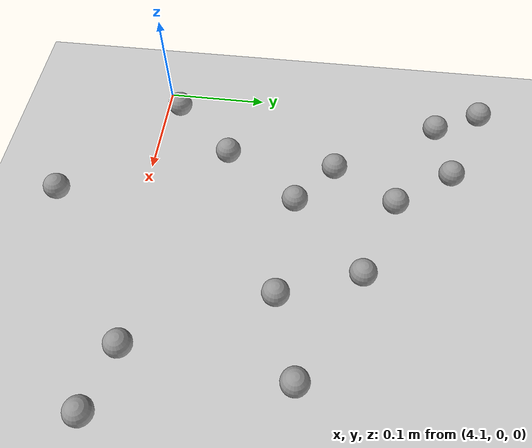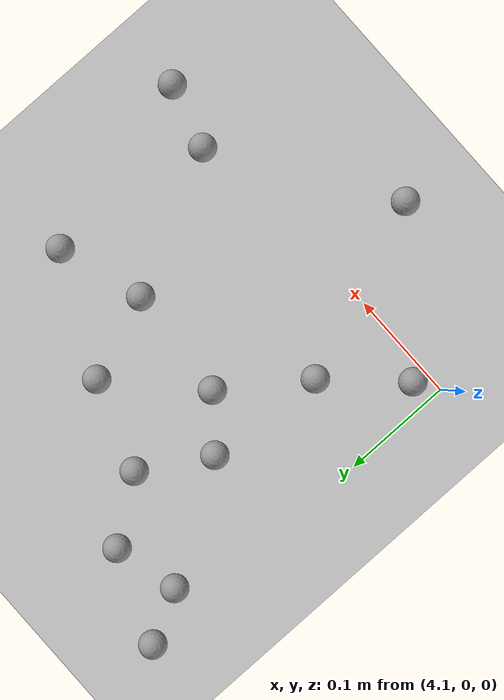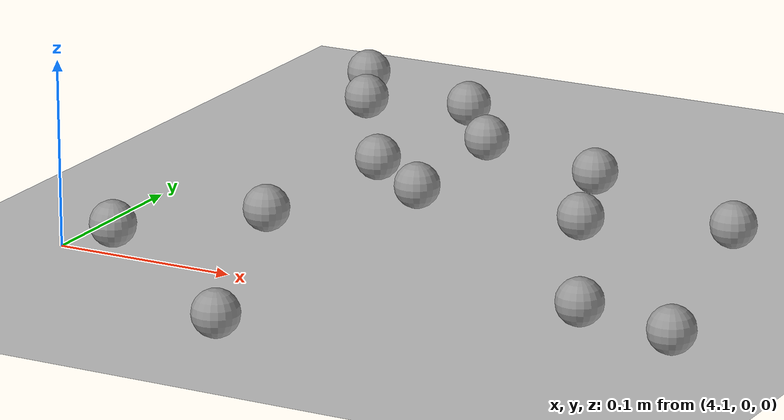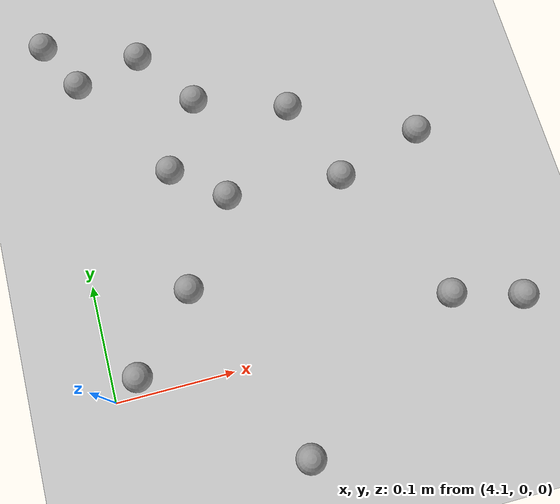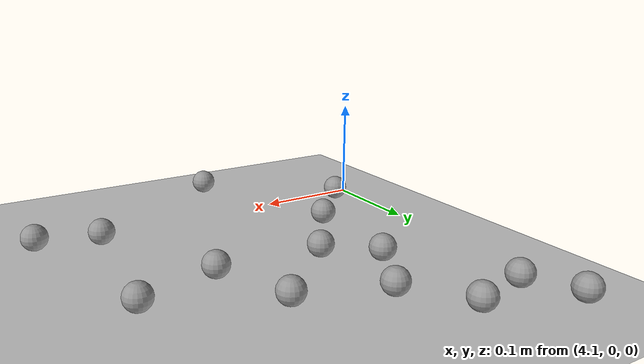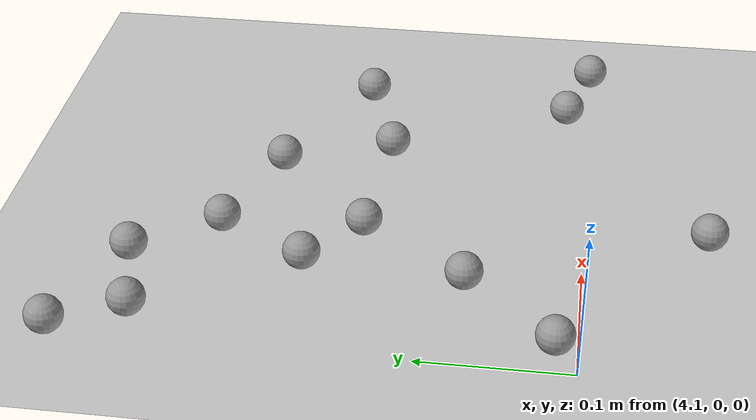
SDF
<sdf version="1.6">
 <world name="default">
  <model name="ground_plane">
   <static>1</static>
   <link name="link">
    <collision name="collision">
     <geometry><plane><normal>0 0 1</normal><size>100 100</size></plane></geometry>
     <surface><friction><ode><mu>100</mu><mu2>50</mu2></ode></friction></surface>
    </collision>
    <visual name="visual">
     <cast_shadows>0</cast_shadows>
     <geometry><plane><normal>0 0 1</normal><size>100 100</size></plane></geometry>
     <material>
      <script><uri>file://media/materials/scripts/gazebo.material</uri><name>Gazebo/Grey</name></script>
     </material>
    </visual>
   </link>
  </model>
  <model name="ball_bearing">
   <link name="link">
    <pose>0 0 0.003 0 -0 0</pose>
    <inertial>
     <mass>0.0011</mass>
     <inertia>
      <ixx>3.96e-09</ixx>
      <ixy>0</ixy>
      <ixz>0</ixz>
      <iyy>3.96e-09</iyy>
      <iyz>0</iyz>
      <izz>3.96e-09</izz>
     </inertia>
    </inertial>
    <collision name="collision">
     <geometry><sphere><radius>0.0125</radius></sphere></geometry>
     <surface>
      <contact>
       <poissons_ratio>0.305</poissons_ratio>
       <elastic_modulus>2e+11</elastic_modulus>
       <ode><kp>100000</kp><kd>100</kd><max_vel>100</max_vel><min_depth>0.001</min_depth></ode>
      </contact>
      <friction>
       <torsional>
        <coefficient>1</coefficient>
        <use_patch_radius>0</use_patch_radius>
        <surface_radius>0.01</surface_radius>
       </torsional>
      </friction>
     </surface>
    </collision>
    <visual name="visual">
     <geometry><sphere><radius>0.0125</radius></sphere></geometry>
     <material>
      <script><uri>file://media/materials/scripts/gazebo.material</uri><name>Gazebo/Grey</name></script>
     </material>
    </visual>
    <velocity_decay><linear>0</linear><angular>0.005</angular></velocity_decay>
   </link>
   <pose>4.10181 0.328356 0.0085 0 -0 0</pose>
  </model>
  <model name="ball_bearing_0">
   <link name="link">
    <pose>0 0 0.003 0 -0 0</pose>
    <inertial>
     <mass>0.0011</mass>
     <inertia>
      <ixx>3.96e-09</ixx>
      <ixy>0</ixy>
      <ixz>0</ixz>
      <iyy>3.96e-09</iyy>
      <iyz>0</iyz>
      <izz>3.96e-09</izz>
     </inertia>
    </inertial>
    <collision name="collision">
     <geometry><sphere><radius>0.0125</radius></sphere></geometry>
     <surface>
      <contact>
       <poissons_ratio>0.305</poissons_ratio>
       <elastic_modulus>2e+11</elastic_modulus>
       <ode><kp>100000</kp><kd>100</kd><max_vel>100</max_vel><min_depth>0.001</min_depth></ode>
      </contact>
      <friction>
       <torsional>
        <coefficient>1</coefficient>
        <use_patch_radius>0</use_patch_radius>
        <surface_radius>0.01</surface_radius>
       </torsional>
      </friction>
     </surface>
    </collision>
    <visual name="visual">
     <geometry><sphere><radius>0.0125</radius></sphere></geometry>
     <material>
      <script><uri>file://media/materials/scripts/gazebo.material</uri><name>Gazebo/Grey</name></script>
     </material>
    </visual>
    <velocity_decay><linear>0</linear><angular>0.005</angular></velocity_decay>
   </link>
   <pose>4.12531 0.282844 0.0085 0 -0 0</pose>
  </model>
  <model name="ball_bearing_1">
   <link name="link">
    <pose>0 0 0.003 0 -0 0</pose>
    <inertial>
     <mass>0.0011</mass>
     <inertia>
      <ixx>3.96e-09</ixx>
      <ixy>0</ixy>
      <ixz>0</ixz>
      <iyy>3.96e-09</iyy>
      <iyz>0</iyz>
      <izz>3.96e-09</izz>
     </inertia>
    </inertial>
    <collision name="collision">
     <geometry><sphere><radius>0.0125</radius></sphere></geometry>
     <surface>
      <contact>
       <poissons_ratio>0.305</poissons_ratio>
       <elastic_modulus>2e+11</elastic_modulus>
       <ode><kp>100000</kp><kd>100</kd><max_vel>100</max_vel><min_depth>0.001</min_depth></ode>
      </contact>
      <friction>
       <torsional>
        <coefficient>1</coefficient>
        <use_patch_radius>0</use_patch_radius>
        <surface_radius>0.01</surface_radius>
       </torsional>
      </friction>
     </surface>
    </collision>
    <visual name="visual">
     <geometry><sphere><radius>0.0125</radius></sphere></geometry>
     <material>
      <script><uri>file://media/materials/scripts/gazebo.material</uri><name>Gazebo/Grey</name></script>
     </material>
    </visual>
    <velocity_decay><linear>0</linear><angular>0.005</angular></velocity_decay>
   </link>
   <pose>4.18324 0.297197 0.0085 0 -0 0</pose>
  </model>
  <model name="ball_bearing_2">
   <link name="link">
    <pose>0 0 0.003 0 -0 0</pose>
    <inertial>
     <mass>0.0011</mass>
     <inertia>
      <ixx>3.96e-09</ixx>
      <ixy>0</ixy>
      <ixz>0</ixz>
      <iyy>3.96e-09</iyy>
      <iyz>0</iyz>
      <izz>3.96e-09</izz>
     </inertia>
    </inertial>
    <collision name="collision">
     <geometry><sphere><radius>0.0125</radius></sphere></geometry>
     <surface>
      <contact>
       <poissons_ratio>0.305</poissons_ratio>
       <elastic_modulus>2e+11</elastic_modulus>
       <ode><kp>100000</kp><kd>100</kd><max_vel>100</max_vel><min_depth>0.001</min_depth></ode>
      </contact>
      <friction>
       <torsional>
        <coefficient>1</coefficient>
        <use_patch_radius>0</use_patch_radius>
        <surface_radius>0.01</surface_radius>
       </torsional>
      </friction>
     </surface>
    </collision>
    <visual name="visual">
     <geometry><sphere><radius>0.0125</radius></sphere></geometry>
     <material>
      <script><uri>file://media/materials/scripts/gazebo.material</uri><name>Gazebo/Grey</name></script>
     </material>
    </visual>
    <velocity_decay><linear>0</linear><angular>0.005</angular></velocity_decay>
   </link>
   <pose>4.17938 0.075215 0.0085 0 -0 0</pose>
  </model>
  <model name="ball_bearing_3">
   <link name="link">
    <pose>0 0 0.003 0 -0 0</pose>
    <inertial>
     <mass>0.0011</mass>
     <inertia>
      <ixx>3.96e-09</ixx>
      <ixy>0</ixy>
      <ixz>0</ixz>
      <iyy>3.96e-09</iyy>
      <iyz>0</iyz>
      <izz>3.96e-09</izz>
     </inertia>
    </inertial>
    <collision name="collision">
     <geometry><sphere><radius>0.0125</radius></sphere></geometry>
     <surface>
      <contact>
       <poissons_ratio>0.305</poissons_ratio>
       <elastic_modulus>2e+11</elastic_modulus>
       <ode><kp>100000</kp><kd>100</kd><max_vel>100</max_vel><min_depth>0.001</min_depth></ode>
      </contact>
      <friction>
       <torsional>
        <coefficient>1</coefficient>
        <use_patch_radius>0</use_patch_radius>
        <surface_radius>0.01</surface_radius>
       </torsional>
      </friction>
     </surface>
    </collision>
    <visual name="visual">
     <geometry><sphere><radius>0.0125</radius></sphere></geometry>
     <material>
      <script><uri>file://media/materials/scripts/gazebo.material</uri><name>Gazebo/Grey</name></script>
     </material>
    </visual>
    <velocity_decay><linear>0</linear><angular>0.005</angular></velocity_decay>
   </link>
   <pose>4.23031 0.147379 0.0085 0 -0 0</pose>
  </model>
  <model name="ball_bearing_4">
   <link name="link">
    <pose>0 0 0.003 0 -0 0</pose>
    <inertial>
     <mass>0.0011</mass>
     <inertia>
      <ixx>3.96e-09</ixx>
      <ixy>0</ixy>
      <ixz>0</ixz>
      <iyy>3.96e-09</iyy>
      <iyz>0</iyz>
      <izz>3.96e-09</izz>
     </inertia>
    </inertial>
    <collision name="collision">
     <geometry><sphere><radius>0.0125</radius></sphere></geometry>
     <surface>
      <contact>
       <poissons_ratio>0.305</poissons_ratio>
       <elastic_modulus>2e+11</elastic_modulus>
       <ode><kp>100000</kp><kd>100</kd><max_vel>100</max_vel><min_depth>0.001</min_depth></ode>
      </contact>
      <friction>
       <torsional>
        <coefficient>1</coefficient>
        <use_patch_radius>0</use_patch_radius>
        <surface_radius>0.01</surface_radius>
       </torsional>
      </friction>
     </surface>
    </collision>
    <visual name="visual">
     <geometry><sphere><radius>0.0125</radius></sphere></geometry>
     <material>
      <script><uri>file://media/materials/scripts/gazebo.material</uri><name>Gazebo/Grey</name></script>
     </material>
    </visual>
    <velocity_decay><linear>0</linear><angular>0.005</angular></velocity_decay>
   </link>
   <pose>4.30259 0.215193 0.0085 0 -0 0</pose>
  </model>
  <model name="ball_bearing_5">
   <link name="link">
    <pose>0 0 0.003 0 -0 0</pose>
    <inertial>
     <mass>0.0011</mass>
     <inertia>
      <ixx>3.96e-09</ixx>
      <ixy>0</ixy>
      <ixz>0</ixz>
      <iyy>3.96e-09</iyy>
      <iyz>0</iyz>
      <izz>3.96e-09</izz>
     </inertia>
    </inertial>
    <collision name="collision">
     <geometry><sphere><radius>0.0125</radius></sphere></geometry>
     <surface>
      <contact>
       <poissons_ratio>0.305</poissons_ratio>
       <elastic_modulus>2e+11</elastic_modulus>
       <ode><kp>100000</kp><kd>100</kd><max_vel>100</max_vel><min_depth>0.001</min_depth></ode>
      </contact>
      <friction>
       <torsional>
        <coefficient>1</coefficient>
        <use_patch_radius>0</use_patch_radius>
        <surface_radius>0.01</surface_radius>
       </torsional>
      </friction>
     </surface>
    </collision>
    <visual name="visual">
     <geometry><sphere><radius>0.0125</radius></sphere></geometry>
     <material>
      <script><uri>file://media/materials/scripts/gazebo.material</uri><name>Gazebo/Grey</name></script>
     </material>
    </visual>
    <velocity_decay><linear>0</linear><angular>0.005</angular></velocity_decay>
   </link>
   <pose>4.22271 0.243001 0.0085 0 -0 0</pose>
  </model>
  <model name="ball_bearing_6">
   <link name="link">
    <pose>0 0 0.003 0 -0 0</pose>
    <inertial>
     <mass>0.0011</mass>
     <inertia>
      <ixx>3.96e-09</ixx>
      <ixy>0</ixy>
      <ixz>0</ixz>
      <iyy>3.96e-09</iyy>
      <iyz>0</iyz>
      <izz>3.96e-09</izz>
     </inertia>
    </inertial>
    <collision name="collision">
     <geometry><sphere><radius>0.0125</radius></sphere></geometry>
     <surface>
      <contact>
       <poissons_ratio>0.305</poissons_ratio>
       <elastic_modulus>2e+11</elastic_modulus>
       <ode><kp>100000</kp><kd>100</kd><max_vel>100</max_vel><min_depth>0.001</min_depth></ode>
      </contact>
      <friction>
       <torsional>
        <coefficient>1</coefficient>
        <use_patch_radius>0</use_patch_radius>
        <surface_radius>0.01</surface_radius>
       </torsional>
      </friction>
     </surface>
    </collision>
    <visual name="visual">
     <geometry><sphere><radius>0.0125</radius></sphere></geometry>
     <material>
      <script><uri>file://media/materials/scripts/gazebo.material</uri><name>Gazebo/Grey</name></script>
     </material>
    </visual>
    <velocity_decay><linear>0</linear><angular>0.005</angular></velocity_decay>
   </link>
   <pose>4.18738 0.182521 0.0085 0 -0 0</pose>
  </model>
  <model name="ball_bearing_7">
   <link name="link">
    <pose>0 0 0.003 0 -0 0</pose>
    <inertial>
     <mass>0.0011</mass>
     <inertia>
      <ixx>3.96e-09</ixx>
      <ixy>0</ixy>
      <ixz>0</ixz>
      <iyy>3.96e-09</iyy>
      <iyz>0</iyz>
      <izz>3.96e-09</izz>
     </inertia>
    </inertial>
    <collision name="collision">
     <geometry><sphere><radius>0.0125</radius></sphere></geometry>
     <surface>
      <contact>
       <poissons_ratio>0.305</poissons_ratio>
       <elastic_modulus>2e+11</elastic_modulus>
       <ode><kp>100000</kp><kd>100</kd><max_vel>100</max_vel><min_depth>0.001</min_depth></ode>
      </contact>
      <friction>
       <torsional>
        <coefficient>1</coefficient>
        <use_patch_radius>0</use_patch_radius>
        <surface_radius>0.01</surface_radius>
       </torsional>
      </friction>
     </surface>
    </collision>
    <visual name="visual">
     <geometry><sphere><radius>0.0125</radius></sphere></geometry>
     <material>
      <script><uri>file://media/materials/scripts/gazebo.material</uri><name>Gazebo/Grey</name></script>
     </material>
    </visual>
    <velocity_decay><linear>0</linear><angular>0.005</angular></velocity_decay>
   </link>
   <pose>4.242 -0.083049 0.0085 0 -0 0</pose>
  </model>
  <model name="ball_bearing_8">
   <link name="link">
    <pose>0 0 0.003 0 -0 0</pose>
    <inertial>
     <mass>0.0011</mass>
     <inertia>
      <ixx>3.96e-09</ixx>
      <ixy>0</ixy>
      <ixz>0</ixz>
      <iyy>3.96e-09</iyy>
      <iyz>0</iyz>
      <izz>3.96e-09</izz>
     </inertia>
    </inertial>
    <collision name="collision">
     <geometry><sphere><radius>0.0125</radius></sphere></geometry>
     <surface>
      <contact>
       <poissons_ratio>0.305</poissons_ratio>
       <elastic_modulus>2e+11</elastic_modulus>
       <ode><kp>100000</kp><kd>100</kd><max_vel>100</max_vel><min_depth>0.001</min_depth></ode>
      </contact>
      <friction>
       <torsional>
        <coefficient>1</coefficient>
        <use_patch_radius>0</use_patch_radius>
        <surface_radius>0.01</surface_radius>
       </torsional>
      </friction>
     </surface>
    </collision>
    <visual name="visual">
     <geometry><sphere><radius>0.0125</radius></sphere></geometry>
     <material>
      <script><uri>file://media/materials/scripts/gazebo.material</uri><name>Gazebo/Grey</name></script>
     </material>
    </visual>
    <velocity_decay><linear>0</linear><angular>0.005</angular></velocity_decay>
   </link>
   <pose>4.12245 0.014563 0.0085 0 -0 0</pose>
  </model>
  <model name="ball_bearing_9">
   <link name="link">
    <pose>0 0 0.003 0 -0 0</pose>
    <inertial>
     <mass>0.0011</mass>
     <inertia>
      <ixx>3.96e-09</ixx>
      <ixy>0</ixy>
      <ixz>0</ixz>
      <iyy>3.96e-09</iyy>
      <iyz>0</iyz>
      <izz>3.96e-09</izz>
     </inertia>
    </inertial>
    <collision name="collision">
     <geometry><sphere><radius>0.0125</radius></sphere></geometry>
     <surface>
      <contact>
       <poissons_ratio>0.305</poissons_ratio>
       <elastic_modulus>2e+11</elastic_modulus>
       <ode><kp>100000</kp><kd>100</kd><max_vel>100</max_vel><min_depth>0.001</min_depth></ode>
      </contact>
      <friction>
       <torsional>
        <coefficient>1</coefficient>
        <use_patch_radius>0</use_patch_radius>
        <surface_radius>0.01</surface_radius>
       </torsional>
      </friction>
     </surface>
    </collision>
    <visual name="visual">
     <geometry><sphere><radius>0.0125</radius></sphere></geometry>
     <material>
      <script><uri>file://media/materials/scripts/gazebo.material</uri><name>Gazebo/Grey</name></script>
     </material>
    </visual>
    <velocity_decay><linear>0</linear><angular>0.005</angular></velocity_decay>
   </link>
   <pose>4.40709 0.164758 0.0085 0 -0 0</pose>
  </model>
  <model name="ball_bearing_10">
   <link name="link">
    <pose>0 0 0.003 0 -0 0</pose>
    <inertial>
     <mass>0.0011</mass>
     <inertia>
      <ixx>3.96e-09</ixx>
      <ixy>0</ixy>
      <ixz>0</ixz>
      <iyy>3.96e-09</iyy>
      <iyz>0</iyz>
      <izz>3.96e-09</izz>
     </inertia>
    </inertial>
    <collision name="collision">
     <geometry><sphere><radius>0.0125</radius></sphere></geometry>
     <surface>
      <contact>
       <poissons_ratio>0.305</poissons_ratio>
       <elastic_modulus>2e+11</elastic_modulus>
       <ode><kp>100000</kp><kd>100</kd><max_vel>100</max_vel><min_depth>0.001</min_depth></ode>
      </contact>
      <friction>
       <torsional>
        <coefficient>1</coefficient>
        <use_patch_radius>0</use_patch_radius>
        <surface_radius>0.01</surface_radius>
       </torsional>
      </friction>
     </surface>
    </collision>
    <visual name="visual">
     <geometry><sphere><radius>0.0125</radius></sphere></geometry>
     <material>
      <script><uri>file://media/materials/scripts/gazebo.material</uri><name>Gazebo/Grey</name></script>
     </material>
    </visual>
    <velocity_decay><linear>0</linear><angular>0.005</angular></velocity_decay>
   </link>
   <pose>4.33075 0.1404 0.0085 0 -0 0</pose>
  </model>
  <model name="ball_bearing_7_clone">
   <link name="link">
    <pose>0 0 0.003 0 -0 0</pose>
    <inertial>
     <mass>0.0011</mass>
     <inertia>
      <ixx>3.96e-09</ixx>
      <ixy>0</ixy>
      <ixz>0</ixz>
      <iyy>3.96e-09</iyy>
      <iyz>0</iyz>
      <izz>3.96e-09</izz>
     </inertia>
    </inertial>
    <collision name="collision">
     <geometry><sphere><radius>0.0125</radius></sphere></geometry>
     <surface>
      <contact>
       <poissons_ratio>0.305</poissons_ratio>
       <elastic_modulus>2e+11</elastic_modulus>
       <ode><kp>100000</kp><kd>100</kd><max_vel>100</max_vel><min_depth>0.001</min_depth></ode>
      </contact>
      <friction>
       <torsional>
        <coefficient>1</coefficient>
        <use_patch_radius>0</use_patch_radius>
        <surface_radius>0.01</surface_radius>
       </torsional>
      </friction>
     </surface>
    </collision>
    <visual name="visual">
     <geometry><sphere><radius>0.0125</radius></sphere></geometry>
     <material>
      <script><uri>file://media/materials/scripts/gazebo.material</uri><name>Gazebo/Grey</name></script>
     </material>
    </visual>
    <velocity_decay><linear>0</linear><angular>0.005</angular></velocity_decay>
   </link>
   <pose>4.39133 0.016347 0.0085 0 -0 0</pose>
  </model>
  <model name="ball_bearing_7_clone_0">
   <link name="link">
    <pose>0 0 0.003 0 -0 0</pose>
    <inertial>
     <mass>0.0011</mass>
     <inertia>
      <ixx>3.96e-09</ixx>
      <ixy>0</ixy>
      <ixz>0</ixz>
      <iyy>3.96e-09</iyy>
      <iyz>0</iyz>
      <izz>3.96e-09</izz>
     </inertia>
    </inertial>
    <collision name="collision">
     <geometry><sphere><radius>0.0125</radius></sphere></geometry>
     <surface>
      <contact>
       <poissons_ratio>0.305</poissons_ratio>
       <elastic_modulus>2e+11</elastic_modulus>
       <ode><kp>100000</kp><kd>100</kd><max_vel>100</max_vel><min_depth>0.001</min_depth></ode>
      </contact>
      <friction>
       <torsional>
        <coefficient>1</coefficient>
        <use_patch_radius>0</use_patch_radius>
        <surface_radius>0.01</surface_radius>
       </torsional>
      </friction>
     </surface>
    </collision>
    <visual name="visual">
     <geometry><sphere><radius>0.0125</radius></sphere></geometry>
     <material>
      <script><uri>file://media/materials/scripts/gazebo.material</uri><name>Gazebo/Grey</name></script>
     </material>
    </visual>
    <velocity_decay><linear>0</linear><angular>0.005</angular></velocity_decay>
   </link>
   <pose>4.44903 0 0.0085 0 -0 0</pose>
  </model>
 </world>
</sdf>
